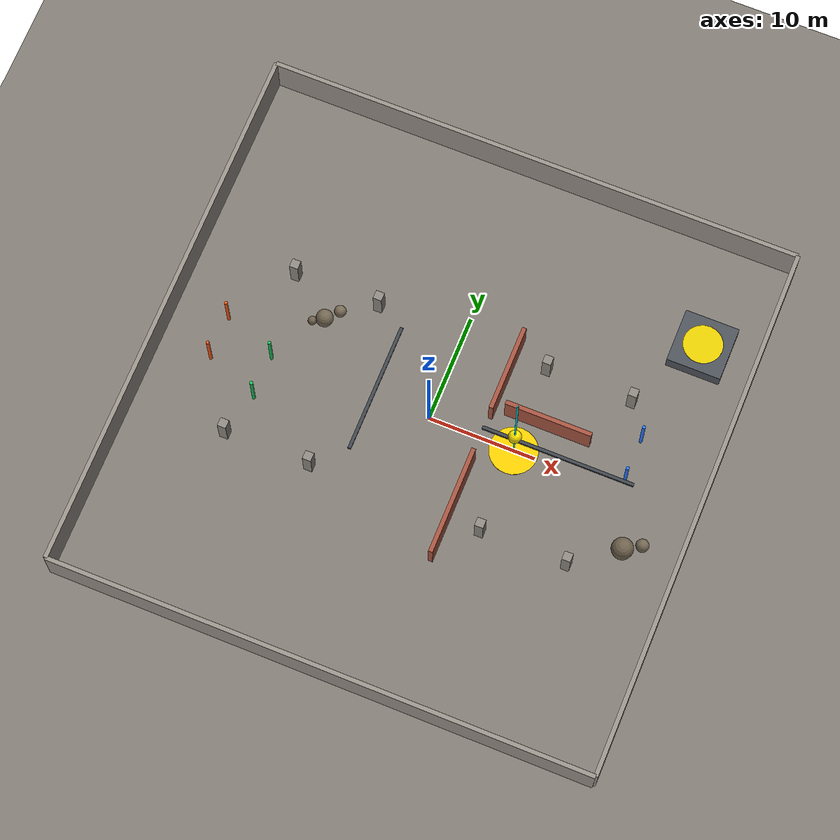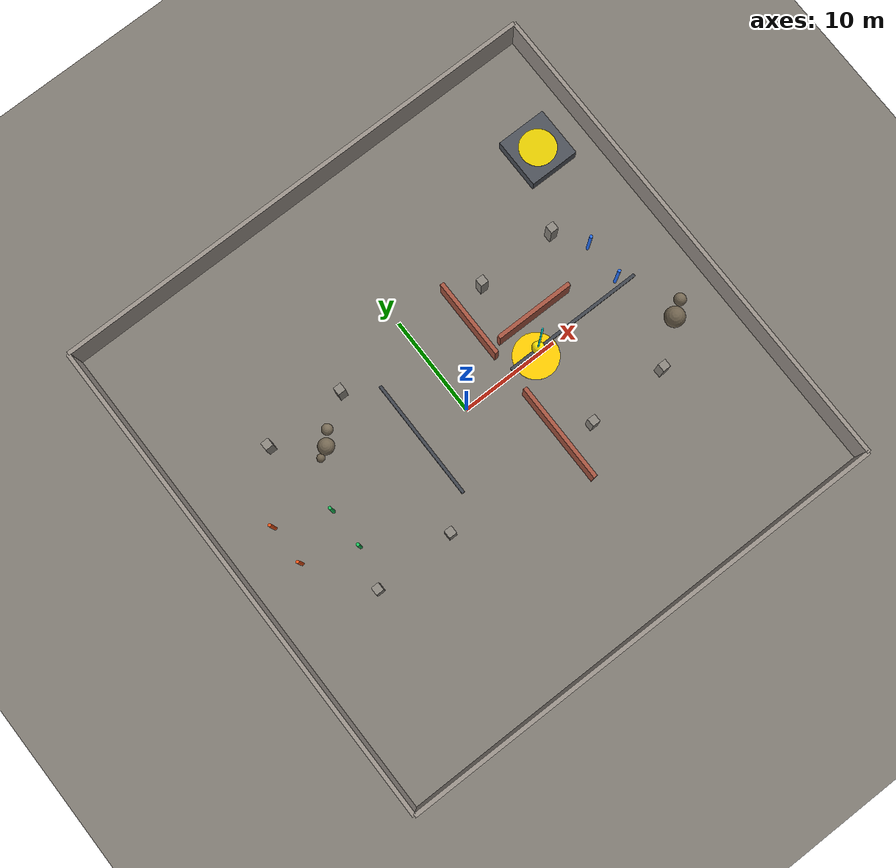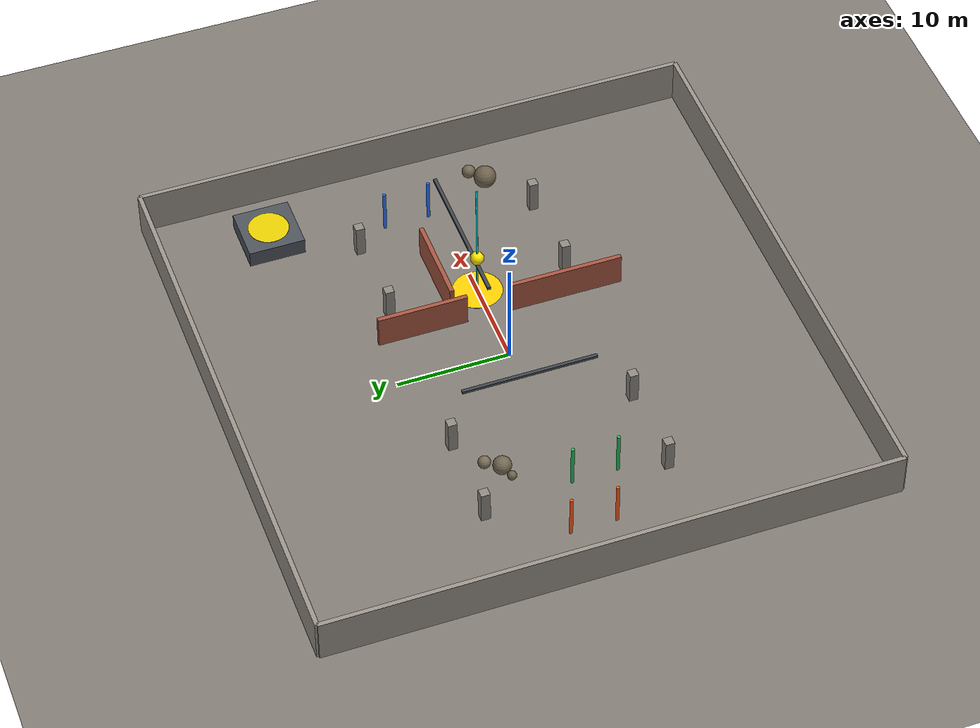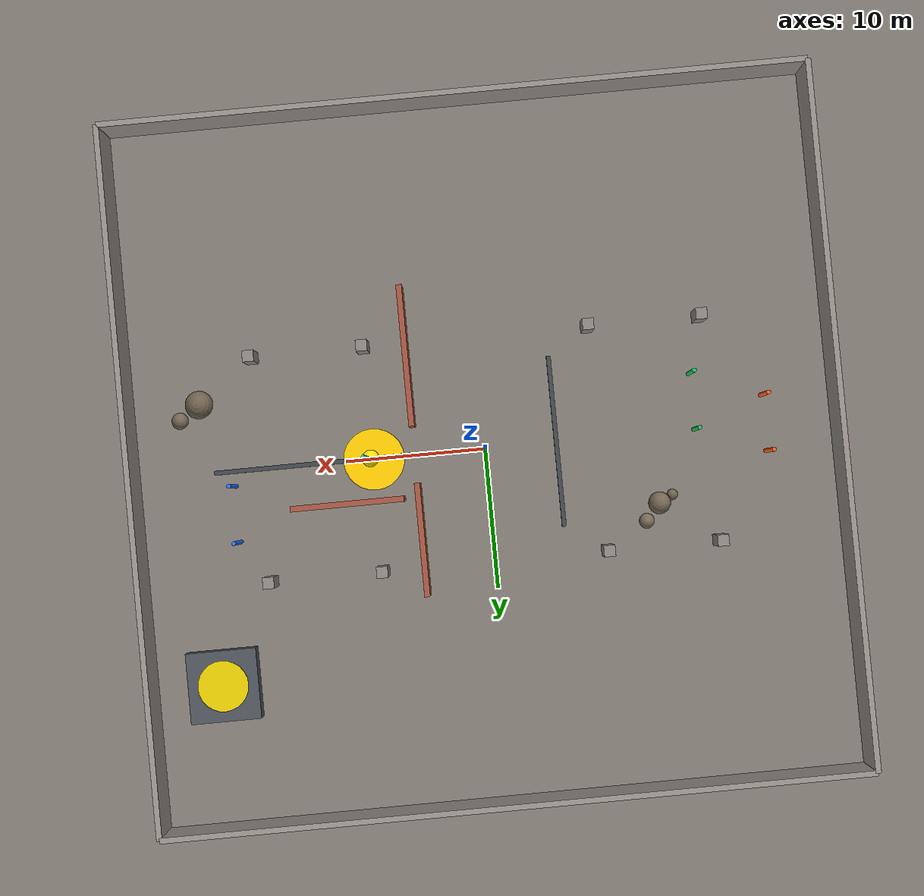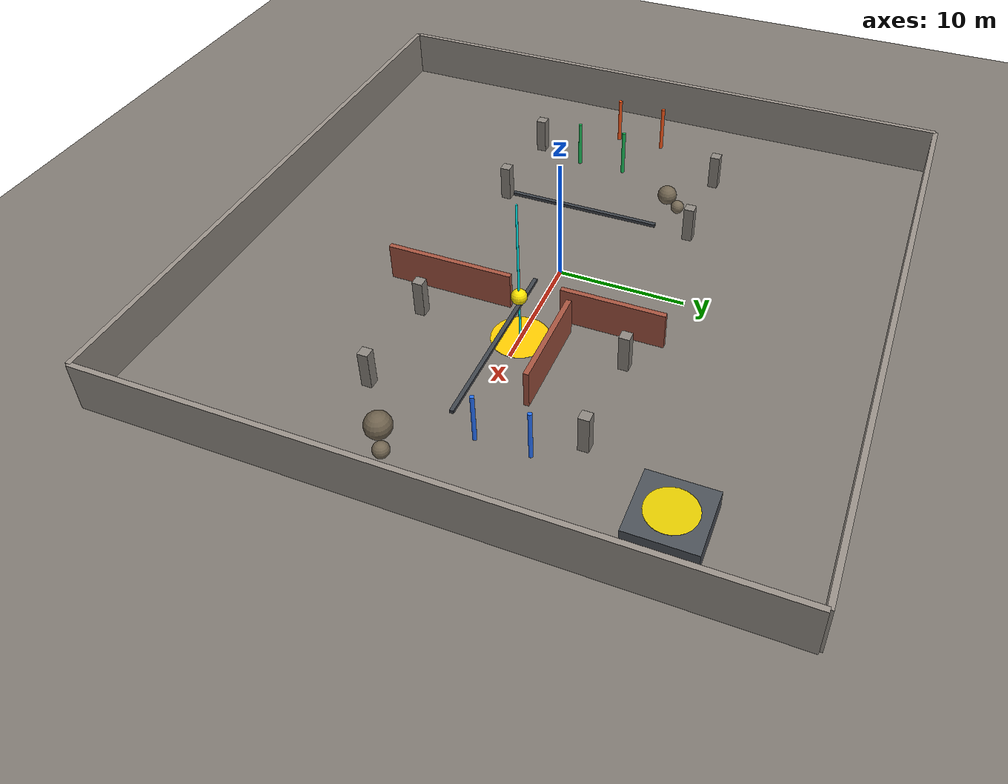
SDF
<sdf version="1.8">
 <world name="single_drone_obstacle_world">
  <gravity>0 0 -9.80665</gravity>
  <physics name="1ms" type="ignored">
   <max_step_size>0.001</max_step_size>
   <real_time_update_rate>1000</real_time_update_rate>
   <real_time_factor>1.0</real_time_factor>
  </physics>
  <scene>
   <ambient>0.35 0.35 0.35 1.0</ambient>
   <background>0.55 0.65 0.85 1.0</background>
   <shadows>true</shadows>
   <grid>true</grid>
  </scene>
  <plugin filename="gz-sim-physics-system" name="gz::sim::systems::Physics"/>
  <plugin filename="gz-sim-scene-broadcaster-system" name="gz::sim::systems::SceneBroadcaster"/>
  <plugin filename="gz-sim-user-commands-system" name="gz::sim::systems::UserCommands"/>
  <plugin filename="gz-sim-sensors-system" name="gz::sim::systems::Sensors">
   <render_engine>ogre2</render_engine>
  </plugin>
  <plugin filename="gz-sim-imu-system" name="gz::sim::systems::Imu"/>
  <plugin filename="gz-sim-wind-effects-system" name="gz::sim::systems::WindEffects">
   <horizontal><magnitude>2.5</magnitude><direction>1.0 0.0 0</direction></horizontal>
   <vertical><magnitude>0.3</magnitude></vertical>
  </plugin>
  <light type="directional" name="sun">
   <pose>0 0 100 0 0 0</pose>
   <diffuse>0.95 0.95 0.92 1</diffuse>
   <specular>0.4 0.4 0.4 1</specular>
   <attenuation>
    <range>1000</range>
    <constant>0.9</constant>
    <linear>0.01</linear>
    <quadratic>0.001</quadratic>
   </attenuation>
   <direction>-0.5 0.1 -0.9</direction>
  </light>
  <light type="point" name="ambient_fill">
   <pose>0 0 12 0 0 0</pose>
   <diffuse>0.3 0.35 0.4 1</diffuse>
   <specular>0.1 0.1 0.1 1</specular>
   <attenuation>
    <range>80</range>
    <constant>0.5</constant>
    <linear>0.05</linear>
    <quadratic>0.001</quadratic>
   </attenuation>
  </light>
  <model name="ground_plane">
   <static>true</static>
   <link name="link">
    <collision name="collision">
     <geometry><plane><normal>0 0 1</normal><size>100 100</size></plane></geometry>
     <surface>
      <friction><ode><mu>0.9</mu><mu2>0.9</mu2></ode></friction>
      <bounce><restitution_coefficient>0.1</restitution_coefficient></bounce>
     </surface>
    </collision>
    <visual name="visual">
     <geometry><plane><normal>0 0 1</normal><size>100 100</size></plane></geometry>
     <material>
      <ambient>0.45 0.42 0.40 1</ambient>
      <diffuse>0.50 0.48 0.45 1</diffuse>
      <specular>0.05 0.05 0.05 1</specular>
     </material>
    </visual>
   </link>
  </model>
  <model name="wall_north">
   <static>true</static>
   <pose>0 25 2.0 0 0 0</pose>
   <link name="link">
    <collision name="col"><geometry><box><size>50 0.4 4.0</size></box></geometry></collision>
    <visual name="vis">
     <geometry><box><size>50 0.4 4.0</size></box></geometry>
     <material><ambient>0.55 0.52 0.50 1</ambient><diffuse>0.60 0.57 0.54 1</diffuse></material>
    </visual>
   </link>
  </model>
  <model name="wall_south">
   <static>true</static>
   <pose>0 -25 2.0 0 0 0</pose>
   <link name="link">
    <collision name="col"><geometry><box><size>50 0.4 4.0</size></box></geometry></collision>
    <visual name="vis">
     <geometry><box><size>50 0.4 4.0</size></box></geometry>
     <material><ambient>0.55 0.52 0.50 1</ambient><diffuse>0.60 0.57 0.54 1</diffuse></material>
    </visual>
   </link>
  </model>
  <model name="wall_east">
   <static>true</static>
   <pose>25 0 2.0 0 0 0</pose>
   <link name="link">
    <collision name="col"><geometry><box><size>0.4 50 4.0</size></box></geometry></collision>
    <visual name="vis">
     <geometry><box><size>0.4 50 4.0</size></box></geometry>
     <material><ambient>0.55 0.52 0.50 1</ambient><diffuse>0.60 0.57 0.54 1</diffuse></material>
    </visual>
   </link>
  </model>
  <model name="wall_west">
   <static>true</static>
   <pose>-25 0 2.0 0 0 0</pose>
   <link name="link">
    <collision name="col"><geometry><box><size>0.4 50 4.0</size></box></geometry></collision>
    <visual name="vis">
     <geometry><box><size>0.4 50 4.0</size></box></geometry>
     <material><ambient>0.55 0.52 0.50 1</ambient><diffuse>0.60 0.57 0.54 1</diffuse></material>
    </visual>
   </link>
  </model>
  <model name="pillar_A1">
   <static>true</static>
   <pose>8  8  1.5 0 0 0</pose>
   <link name="link">
    <collision name="col"><geometry><box><size>0.8 0.8 3.0</size></box></geometry></collision>
    <visual name="vis">
     <geometry><box><size>0.8 0.8 3.0</size></box></geometry>
     <material><ambient>0.50 0.48 0.45 1</ambient><diffuse>0.55 0.53 0.50 1</diffuse></material>
    </visual>
   </link>
  </model>
  <model name="pillar_A2">
   <static>true</static>
   <pose>8 -8  1.5 0 0 0</pose>
   <link name="link">
    <collision name="col"><geometry><box><size>0.8 0.8 3.0</size></box></geometry></collision>
    <visual name="vis">
     <geometry><box><size>0.8 0.8 3.0</size></box></geometry>
     <material><ambient>0.50 0.48 0.45 1</ambient><diffuse>0.55 0.53 0.50 1</diffuse></material>
    </visual>
   </link>
  </model>
  <model name="pillar_A3">
   <static>true</static>
   <pose>16  8  1.5 0 0 0</pose>
   <link name="link">
    <collision name="col"><geometry><box><size>0.8 0.8 3.0</size></box></geometry></collision>
    <visual name="vis">
     <geometry><box><size>0.8 0.8 3.0</size></box></geometry>
     <material><ambient>0.50 0.48 0.45 1</ambient><diffuse>0.55 0.53 0.50 1</diffuse></material>
    </visual>
   </link>
  </model>
  <model name="pillar_A4">
   <static>true</static>
   <pose>16 -8  1.5 0 0 0</pose>
   <link name="link">
    <collision name="col"><geometry><box><size>0.8 0.8 3.0</size></box></geometry></collision>
    <visual name="vis">
     <geometry><box><size>0.8 0.8 3.0</size></box></geometry>
     <material><ambient>0.50 0.48 0.45 1</ambient><diffuse>0.55 0.53 0.50 1</diffuse></material>
    </visual>
   </link>
  </model>
  <model name="pillar_B1">
   <static>true</static>
   <pose>-8  8  1.5 0 0 0</pose>
   <link name="link">
    <collision name="col"><geometry><box><size>0.8 0.8 3.0</size></box></geometry></collision>
    <visual name="vis">
     <geometry><box><size>0.8 0.8 3.0</size></box></geometry>
     <material><ambient>0.50 0.48 0.45 1</ambient><diffuse>0.55 0.53 0.50 1</diffuse></material>
    </visual>
   </link>
  </model>
  <model name="pillar_B2">
   <static>true</static>
   <pose>-8 -8  1.5 0 0 0</pose>
   <link name="link">
    <collision name="col"><geometry><box><size>0.8 0.8 3.0</size></box></geometry></collision>
    <visual name="vis">
     <geometry><box><size>0.8 0.8 3.0</size></box></geometry>
     <material><ambient>0.50 0.48 0.45 1</ambient><diffuse>0.55 0.53 0.50 1</diffuse></material>
    </visual>
   </link>
  </model>
  <model name="pillar_B3">
   <static>true</static>
   <pose>-16  8  1.5 0 0 0</pose>
   <link name="link">
    <collision name="col"><geometry><box><size>0.8 0.8 3.0</size></box></geometry></collision>
    <visual name="vis">
     <geometry><box><size>0.8 0.8 3.0</size></box></geometry>
     <material><ambient>0.50 0.48 0.45 1</ambient><diffuse>0.55 0.53 0.50 1</diffuse></material>
    </visual>
   </link>
  </model>
  <model name="pillar_B4">
   <static>true</static>
   <pose>-16 -8  1.5 0 0 0</pose>
   <link name="link">
    <collision name="col"><geometry><box><size>0.8 0.8 3.0</size></box></geometry></collision>
    <visual name="vis">
     <geometry><box><size>0.8 0.8 3.0</size></box></geometry>
     <material><ambient>0.50 0.48 0.45 1</ambient><diffuse>0.55 0.53 0.50 1</diffuse></material>
    </visual>
   </link>
  </model>
  <model name="corridor_wall_1L">
   <static>true</static>
   <pose>5 6 1.5 0 0 0</pose>
   <link name="link">
    <collision name="col"><geometry><box><size>0.4 8.0 3.0</size></box></geometry></collision>
    <visual name="vis">
     <geometry><box><size>0.4 8.0 3.0</size></box></geometry>
     <material><ambient>0.60 0.30 0.22 1</ambient><diffuse>0.65 0.33 0.25 1</diffuse></material>
    </visual>
   </link>
  </model>
  <model name="corridor_wall_1R">
   <static>true</static>
   <pose>5 -7 1.5 0 0 0</pose>
   <link name="link">
    <collision name="col"><geometry><box><size>0.4 10.0 3.0</size></box></geometry></collision>
    <visual name="vis">
     <geometry><box><size>0.4 10.0 3.0</size></box></geometry>
     <material><ambient>0.60 0.30 0.22 1</ambient><diffuse>0.65 0.33 0.25 1</diffuse></material>
    </visual>
   </link>
  </model>
  <model name="corridor_wall_2T">
   <static>true</static>
   <pose>10 3 1.5 0 0 0</pose>
   <link name="link">
    <collision name="col"><geometry><box><size>8.0 0.4 3.0</size></box></geometry></collision>
    <visual name="vis">
     <geometry><box><size>8.0 0.4 3.0</size></box></geometry>
     <material><ambient>0.60 0.30 0.22 1</ambient><diffuse>0.65 0.33 0.25 1</diffuse></material>
    </visual>
   </link>
  </model>
  <model name="beam_H1">
   <static>true</static>
   <pose>-5 0 2.8 0 0 0</pose>
   <link name="link">
    <collision name="col"><geometry><box><size>0.3 12.0 0.25</size></box></geometry></collision>
    <visual name="vis">
     <geometry><box><size>0.3 12.0 0.25</size></box></geometry>
     <material><ambient>0.20 0.22 0.25 1</ambient><diffuse>0.25 0.27 0.30 1</diffuse></material>
    </visual>
   </link>
  </model>
  <model name="beam_H2">
   <static>true</static>
   <pose>12 0 3.2 0 0 1.5708</pose>
   <link name="link">
    <collision name="col"><geometry><box><size>0.3 14.0 0.25</size></box></geometry></collision>
    <visual name="vis">
     <geometry><box><size>0.3 14.0 0.25</size></box></geometry>
     <material><ambient>0.20 0.22 0.25 1</ambient><diffuse>0.25 0.27 0.30 1</diffuse></material>
    </visual>
   </link>
  </model>
  <model name="rubble_1a">
   <static>true</static>
   <pose>-12 5 0.8 0 0 0</pose>
   <link name="link">
    <collision name="col"><geometry><sphere><radius>0.8</radius></sphere></geometry></collision>
    <visual name="vis">
     <geometry><sphere><radius>0.8</radius></sphere></geometry>
     <material><ambient>0.40 0.35 0.28 1</ambient><diffuse>0.45 0.40 0.32 1</diffuse></material>
    </visual>
   </link>
  </model>
  <model name="rubble_1b">
   <static>true</static>
   <pose>-11 6.2 0.55 0 0 0</pose>
   <link name="link">
    <collision name="col"><geometry><sphere><radius>0.55</radius></sphere></geometry></collision>
    <visual name="vis">
     <geometry><sphere><radius>0.55</radius></sphere></geometry>
     <material><ambient>0.42 0.38 0.30 1</ambient><diffuse>0.47 0.42 0.34 1</diffuse></material>
    </visual>
   </link>
  </model>
  <model name="rubble_1c">
   <static>true</static>
   <pose>-13 4.5 0.4 0 0 0</pose>
   <link name="link">
    <collision name="col"><geometry><sphere><radius>0.4</radius></sphere></geometry></collision>
    <visual name="vis">
     <geometry><sphere><radius>0.4</radius></sphere></geometry>
     <material><ambient>0.38 0.33 0.26 1</ambient><diffuse>0.43 0.38 0.30 1</diffuse></material>
    </visual>
   </link>
  </model>
  <model name="rubble_2a">
   <static>true</static>
   <pose>20 -5 1.0 0 0 0</pose>
   <link name="link">
    <collision name="col"><geometry><sphere><radius>1.0</radius></sphere></geometry></collision>
    <visual name="vis">
     <geometry><sphere><radius>1.0</radius></sphere></geometry>
     <material><ambient>0.38 0.33 0.26 1</ambient><diffuse>0.43 0.38 0.30 1</diffuse></material>
    </visual>
   </link>
  </model>
  <model name="rubble_2b">
   <static>true</static>
   <pose>21.5 -4 0.6 0 0 0</pose>
   <link name="link">
    <collision name="col"><geometry><sphere><radius>0.6</radius></sphere></geometry></collision>
    <visual name="vis">
     <geometry><sphere><radius>0.6</radius></sphere></geometry>
     <material><ambient>0.40 0.35 0.28 1</ambient><diffuse>0.45 0.40 0.32 1</diffuse></material>
    </visual>
   </link>
  </model>
  <model name="gate1_L">
   <static>true</static>
   <pose>-20 2 2.0 0 0 0</pose>
   <link name="link">
    <collision name="col">
     <geometry><cylinder><radius>0.15</radius><length>4.0</length></cylinder></geometry>
    </collision>
    <visual name="vis">
     <geometry><cylinder><radius>0.15</radius><length>4.0</length></cylinder></geometry>
     <material><ambient>1.0 0.3 0.1 1</ambient><diffuse>1.0 0.35 0.1 1</diffuse></material>
    </visual>
   </link>
  </model>
  <model name="gate1_R">
   <static>true</static>
   <pose>-20 -2 2.0 0 0 0</pose>
   <link name="link">
    <collision name="col">
     <geometry><cylinder><radius>0.15</radius><length>4.0</length></cylinder></geometry>
    </collision>
    <visual name="vis">
     <geometry><cylinder><radius>0.15</radius><length>4.0</length></cylinder></geometry>
     <material><ambient>1.0 0.3 0.1 1</ambient><diffuse>1.0 0.35 0.1 1</diffuse></material>
    </visual>
   </link>
  </model>
  <model name="gate2_L">
   <static>true</static>
   <pose>-15 -4 2.0 0 0 0</pose>
   <link name="link">
    <collision name="col">
     <geometry><cylinder><radius>0.15</radius><length>4.0</length></cylinder></geometry>
    </collision>
    <visual name="vis">
     <geometry><cylinder><radius>0.15</radius><length>4.0</length></cylinder></geometry>
     <material><ambient>0.1 0.7 0.3 1</ambient><diffuse>0.1 0.75 0.35 1</diffuse></material>
    </visual>
   </link>
  </model>
  <model name="gate2_R">
   <static>true</static>
   <pose>-15 0 2.0 0 0 0</pose>
   <link name="link">
    <collision name="col">
     <geometry><cylinder><radius>0.15</radius><length>4.0</length></cylinder></geometry>
    </collision>
    <visual name="vis">
     <geometry><cylinder><radius>0.15</radius><length>4.0</length></cylinder></geometry>
     <material><ambient>0.1 0.7 0.3 1</ambient><diffuse>0.1 0.75 0.35 1</diffuse></material>
    </visual>
   </link>
  </model>
  <model name="gate3_L">
   <static>true</static>
   <pose>18 5 2.0 0 0 0</pose>
   <link name="link">
    <collision name="col">
     <geometry><cylinder><radius>0.15</radius><length>4.0</length></cylinder></geometry>
    </collision>
    <visual name="vis">
     <geometry><cylinder><radius>0.15</radius><length>4.0</length></cylinder></geometry>
     <material><ambient>0.1 0.4 1.0 1</ambient><diffuse>0.15 0.45 1.0 1</diffuse></material>
    </visual>
   </link>
  </model>
  <model name="gate3_R">
   <static>true</static>
   <pose>18 1 2.0 0 0 0</pose>
   <link name="link">
    <collision name="col">
     <geometry><cylinder><radius>0.15</radius><length>4.0</length></cylinder></geometry>
    </collision>
    <visual name="vis">
     <geometry><cylinder><radius>0.15</radius><length>4.0</length></cylinder></geometry>
     <material><ambient>0.1 0.4 1.0 1</ambient><diffuse>0.15 0.45 1.0 1</diffuse></material>
    </visual>
   </link>
  </model>
  <model name="landing_platform">
   <static>true</static>
   <pose>20 15 0.75 0 0 0</pose>
   <link name="link">
    <collision name="col"><geometry><box><size>5.0 5.0 1.5</size></box></geometry></collision>
    <visual name="vis">
     <geometry><box><size>5.0 5.0 1.5</size></box></geometry>
     <material><ambient>0.25 0.27 0.30 1</ambient><diffuse>0.30 0.32 0.35 1</diffuse></material>
    </visual>
   </link>
  </model>
  <model name="helipad_marker">
   <static>true</static>
   <pose>20 15 1.515 0 0 0</pose>
   <link name="link">
    <visual name="vis">
     <geometry><cylinder><radius>1.8</radius><length>0.015</length></cylinder></geometry>
     <material>
      <ambient>0.9 0.8 0.0 1</ambient>
      <diffuse>0.9 0.8 0.0 1</diffuse>
      <emissive>0.5 0.45 0.0 1</emissive>
     </material>
    </visual>
   </link>
  </model>
  <model name="ring_target">
   <static>false</static>
   <pose>8.0 0.0 4.0 0 0 0</pose>
   <link name="link">
    <gravity>false</gravity>
    <kinematic>true</kinematic>
    <visual name="vertical_beacon_line">
     <pose>0 0 2.0 0 0 0</pose>
     <geometry><cylinder><radius>0.08</radius><length>12.0</length></cylinder></geometry>
     <material>
      <ambient>0.0 1.0 1.0 1</ambient>
      <diffuse>0.0 1.0 1.0 1</diffuse>
      <emissive>0.0 1.0 1.0 1</emissive>
     </material>
    </visual>
    <visual name="center_beacon">
     <geometry><sphere><radius>0.6</radius></sphere></geometry>
     <material>
      <ambient>1.0 0.9 0.0 1</ambient>
      <diffuse>1.0 0.9 0.0 1</diffuse>
      <emissive>1.0 0.9 0.0 1</emissive>
     </material>
    </visual>
    <visual name="ground_target_ring">
     <pose>0 0 -3.9 0 0 0</pose>
     <geometry><cylinder><radius>2.2</radius><length>0.02</length></cylinder></geometry>
     <material>
      <ambient>1.0 0.8 0.0 1</ambient>
      <diffuse>1.0 0.8 0.0 1</diffuse>
      <emissive>1.0 0.8 0.0 1</emissive>
     </material>
    </visual>
   </link>
  </model>
 </world>
</sdf>
